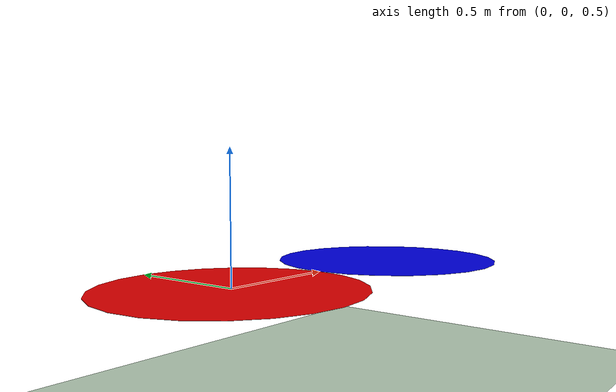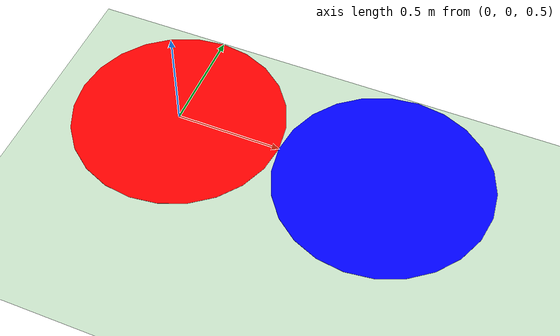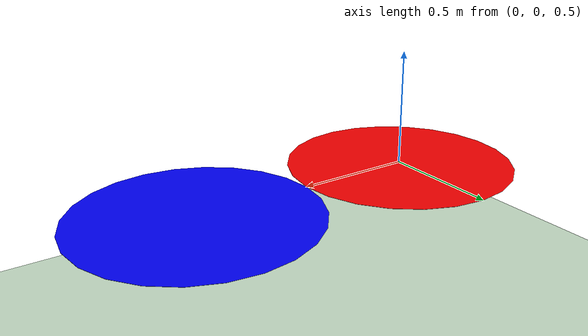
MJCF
<mujoco>
    <option timestep="0.002" />

    <worldbody>
      <geom name="ground" type="plane" size="10 10 0.1" rgba="0.8 0.9 0.8 1" friction="1 0.005 0.0001"/>

      <body name="cylinder1" pos="0 0 0.5">
        <geom name="cylinder1_geom" type="cylinder" size="0.5 0.0005" rgba="1 0 0 1" friction="1 0.005 0.0001"/>
        <joint name="cylinder1_x" type="slide" axis="1 0 0" limited="true" range="-5 5"/>
        <joint name="cylinder1_y" type="slide" axis="0 1 0" limited="true" range="-5 5"/>
      </body>

      <body name="cylinder2" pos="1 0 0.5">
        <geom name="cylinder2_geom" type="cylinder" size="0.5 0.0005" rgba="0 0 1 1" friction="1 0.005 0.0001"/>
        <joint name="cylinder2_x" type="slide" axis="1 0 0" limited="true" range="-5 5"/>
        <joint name="cylinder2_y" type="slide" axis="0 1 0" limited="true" range="-5 5"/>
      </body>
    </worldbody>

    <actuator>
      <motor name="cylinder1_x_motor" joint="cylinder1_x" gear="1" />
      <motor name="cylinder1_y_motor" joint="cylinder1_y" gear="1" />
    </actuator>
  </mujoco>
